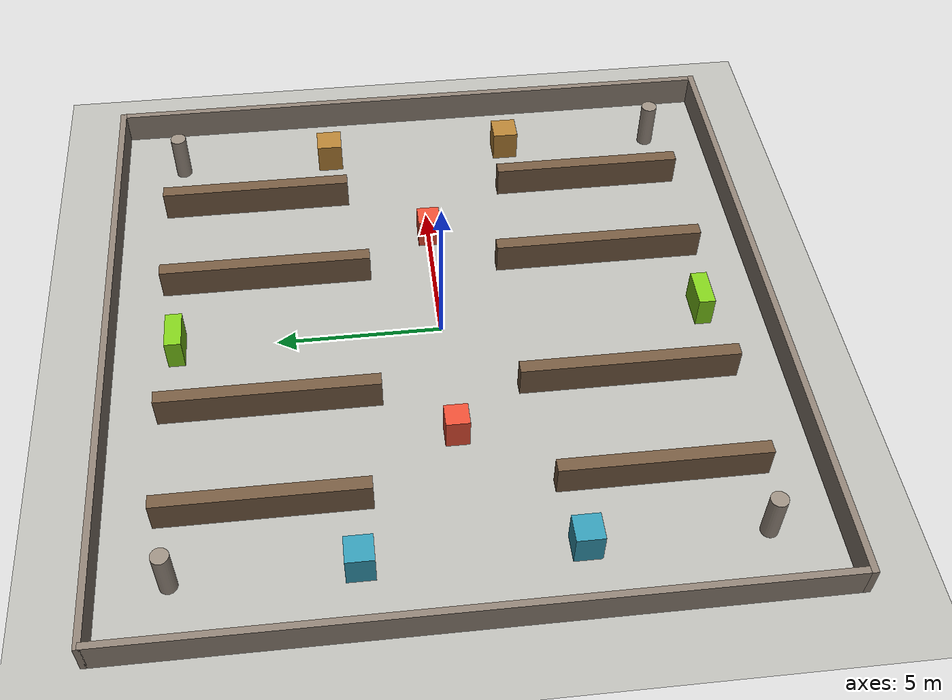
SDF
<?xml version="1.0" ?>
<sdf version="1.6">
  <world name="default">
    <physics name="1ms" type="ignored">
      <max_step_size>0.001</max_step_size>
      <real_time_factor>1.0</real_time_factor>
    </physics>
    <plugin filename="libignition-gazebo-physics-system.so"
            name="ignition::gazebo::systems::Physics"/>
    <plugin filename="libignition-gazebo-user-commands-system.so"
            name="ignition::gazebo::systems::UserCommands"/>
    <plugin filename="libignition-gazebo-scene-broadcaster-system.so"
            name="ignition::gazebo::systems::SceneBroadcaster"/>

    <light type="directional" name="sun">
      <cast_shadows>true</cast_shadows>
      <pose>0 0 10 0 0 0</pose>
      <diffuse>0.85 0.85 0.85 1</diffuse>
      <specular>0.2 0.2 0.2 1</specular>
      <attenuation>
        <range>1000</range><constant>0.9</constant>
        <linear>0.01</linear><quadratic>0.001</quadratic>
      </attenuation>
      <direction>-0.5 0.1 -0.9</direction>
    </light>

    <!-- Ground — concrete tone -->
    <model name="ground_plane"><static>true</static>
      <link name="link">
        <collision name="collision"><geometry><plane><normal>0 0 1</normal><size>100 100</size></plane></geometry></collision>
        <visual name="visual"><geometry><plane><normal>0 0 1</normal><size>100 100</size></plane></geometry>
          <material><ambient>0.72 0.72 0.7 1</ambient><diffuse>0.72 0.72 0.7 1</diffuse></material></visual>
      </link>
    </model>

    <!-- Outer warehouse walls (20×20 m) -->
    <model name="wall_n"><static>true</static><pose>0 10 0.5 0 0 0</pose>
      <link name="link"><collision name="c"><geometry><box><size>20.2 0.2 1</size></box></geometry></collision>
        <visual name="v"><geometry><box><size>20.2 0.2 1</size></box></geometry>
          <material><ambient>0.55 0.5 0.45 1</ambient><diffuse>0.55 0.5 0.45 1</diffuse></material></visual></link>
    </model>
    <model name="wall_s"><static>true</static><pose>0 -10 0.5 0 0 0</pose>
      <link name="link"><collision name="c"><geometry><box><size>20.2 0.2 1</size></box></geometry></collision>
        <visual name="v"><geometry><box><size>20.2 0.2 1</size></box></geometry>
          <material><ambient>0.55 0.5 0.45 1</ambient><diffuse>0.55 0.5 0.45 1</diffuse></material></visual></link>
    </model>
    <model name="wall_e"><static>true</static><pose>10 0 0.5 0 0 0</pose>
      <link name="link"><collision name="c"><geometry><box><size>0.2 20 1</size></box></geometry></collision>
        <visual name="v"><geometry><box><size>0.2 20 1</size></box></geometry>
          <material><ambient>0.55 0.5 0.45 1</ambient><diffuse>0.55 0.5 0.45 1</diffuse></material></visual></link>
    </model>
    <model name="wall_w"><static>true</static><pose>-10 0 0.5 0 0 0</pose>
      <link name="link"><collision name="c"><geometry><box><size>0.2 20 1</size></box></geometry></collision>
        <visual name="v"><geometry><box><size>0.2 20 1</size></box></geometry>
          <material><ambient>0.55 0.5 0.45 1</ambient><diffuse>0.55 0.5 0.45 1</diffuse></material></visual></link>
    </model>

    <!-- ROW WEST (x=-6): two shelf sections with 1.5m gap in middle so passages exist -->
    <!-- North section: y=2.5→8.5 (len=6, cy=5.5) -->
    <model name="shelf_w_N"><static>true</static><pose>-6 5.5 0.5 0 0 0</pose>
      <link name="link"><collision name="c"><geometry><box><size>0.4 6 1</size></box></geometry></collision>
        <visual name="v"><geometry><box><size>0.4 6 1</size></box></geometry>
          <material><ambient>0.45 0.35 0.25 1</ambient><diffuse>0.45 0.35 0.25 1</diffuse></material></visual></link>
    </model>
    <!-- South section: y=-8.5→-2.5 (len=6, cy=-5.5) -->
    <model name="shelf_w_S"><static>true</static><pose>-6 -5.5 0.5 0 0 0</pose>
      <link name="link"><collision name="c"><geometry><box><size>0.4 6 1</size></box></geometry></collision>
        <visual name="v"><geometry><box><size>0.4 6 1</size></box></geometry>
          <material><ambient>0.45 0.35 0.25 1</ambient><diffuse>0.45 0.35 0.25 1</diffuse></material></visual></link>
    </model>
    <!-- Gap in west row: y=-2.5→+2.5 = 5m wide — robot can cross aisle to far west zone -->

    <!-- ROW CENTER-LEFT (x=-2.5): split into two sections with 2m gap at y=0 area -->
    <!-- North section: y=2→8.5 (len=6.5, cy=5.25) -->
    <model name="shelf_cl_N"><static>true</static><pose>-2.5 5.25 0.5 0 0 0</pose>
      <link name="link"><collision name="c"><geometry><box><size>0.4 6.5 1</size></box></geometry></collision>
        <visual name="v"><geometry><box><size>0.4 6.5 1</size></box></geometry>
          <material><ambient>0.45 0.35 0.25 1</ambient><diffuse>0.45 0.35 0.25 1</diffuse></material></visual></link>
    </model>
    <!-- South section: y=-8.5→-2 (len=6.5, cy=-5.25) -->
    <model name="shelf_cl_S"><static>true</static><pose>-2.5 -5.25 0.5 0 0 0</pose>
      <link name="link"><collision name="c"><geometry><box><size>0.4 6.5 1</size></box></geometry></collision>
        <visual name="v"><geometry><box><size>0.4 6.5 1</size></box></geometry>
          <material><ambient>0.45 0.35 0.25 1</ambient><diffuse>0.45 0.35 0.25 1</diffuse></material></visual></link>
    </model>
    <!-- Gap at y=-2→+2 = 4m — robot passes through central aisle ✓ -->

    <!-- ROW CENTER-RIGHT (x=+2.5): mirrored of center-left -->
    <model name="shelf_cr_N"><static>true</static><pose>2.5 5.25 0.5 0 0 0</pose>
      <link name="link"><collision name="c"><geometry><box><size>0.4 6.5 1</size></box></geometry></collision>
        <visual name="v"><geometry><box><size>0.4 6.5 1</size></box></geometry>
          <material><ambient>0.45 0.35 0.25 1</ambient><diffuse>0.45 0.35 0.25 1</diffuse></material></visual></link>
    </model>
    <model name="shelf_cr_S"><static>true</static><pose>2.5 -5.25 0.5 0 0 0</pose>
      <link name="link"><collision name="c"><geometry><box><size>0.4 6.5 1</size></box></geometry></collision>
        <visual name="v"><geometry><box><size>0.4 6.5 1</size></box></geometry>
          <material><ambient>0.45 0.35 0.25 1</ambient><diffuse>0.45 0.35 0.25 1</diffuse></material></visual></link>
    </model>

    <!-- ROW EAST (x=+6): mirrored of west -->
    <model name="shelf_e_N"><static>true</static><pose>6 5.5 0.5 0 0 0</pose>
      <link name="link"><collision name="c"><geometry><box><size>0.4 6 1</size></box></geometry></collision>
        <visual name="v"><geometry><box><size>0.4 6 1</size></box></geometry>
          <material><ambient>0.45 0.35 0.25 1</ambient><diffuse>0.45 0.35 0.25 1</diffuse></material></visual></link>
    </model>
    <model name="shelf_e_S"><static>true</static><pose>6 -5.5 0.5 0 0 0</pose>
      <link name="link"><collision name="c"><geometry><box><size>0.4 6 1</size></box></geometry></collision>
        <visual name="v"><geometry><box><size>0.4 6 1</size></box></geometry>
          <material><ambient>0.45 0.35 0.25 1</ambient><diffuse>0.45 0.35 0.25 1</diffuse></material></visual></link>
    </model>

    <!-- ════ PILLARS (cylindrical support columns) ════════════════
         4 pillars per side row — structural columns marking aisle ends
    ════════════════════════════════════════════════════════════== -->
    <model name="pillar_1"><static>true</static><pose>-8.0  8.0 0.75 0 0 0</pose>
      <link name="link"><collision name="c"><geometry><cylinder><radius>0.25</radius><length>1.5</length></cylinder></geometry></collision>
        <visual name="v"><geometry><cylinder><radius>0.25</radius><length>1.5</length></cylinder></geometry>
          <material><ambient>0.6 0.55 0.5 1</ambient><diffuse>0.6 0.55 0.5 1</diffuse></material></visual></link>
    </model>
    <model name="pillar_2"><static>true</static><pose>8.0  8.0 0.75 0 0 0</pose>
      <link name="link"><collision name="c"><geometry><cylinder><radius>0.25</radius><length>1.5</length></cylinder></geometry></collision>
        <visual name="v"><geometry><cylinder><radius>0.25</radius><length>1.5</length></cylinder></geometry>
          <material><ambient>0.6 0.55 0.5 1</ambient><diffuse>0.6 0.55 0.5 1</diffuse></material></visual></link>
    </model>
    <model name="pillar_3"><static>true</static><pose>-8.0 -8.0 0.75 0 0 0</pose>
      <link name="link"><collision name="c"><geometry><cylinder><radius>0.25</radius><length>1.5</length></cylinder></geometry></collision>
        <visual name="v"><geometry><cylinder><radius>0.25</radius><length>1.5</length></cylinder></geometry>
          <material><ambient>0.6 0.55 0.5 1</ambient><diffuse>0.6 0.55 0.5 1</diffuse></material></visual></link>
    </model>
    <model name="pillar_4"><static>true</static><pose>8.0 -8.0 0.75 0 0 0</pose>
      <link name="link"><collision name="c"><geometry><cylinder><radius>0.25</radius><length>1.5</length></cylinder></geometry></collision>
        <visual name="v"><geometry><cylinder><radius>0.25</radius><length>1.5</length></cylinder></geometry>
          <material><ambient>0.6 0.55 0.5 1</ambient><diffuse>0.6 0.55 0.5 1</diffuse></material></visual></link>
    </model>

    <!-- ════ CRATE OBSTACLES (loading zone, east & west ends) ════ -->
    <!-- East loading zone (x=7 to 9.5, y varies) -->
    <model name="crate_1"><static>true</static><pose>8.0  3.0 0.5 0 0 0</pose>
      <link name="link"><collision name="c"><geometry><box><size>0.8 0.8 1</size></box></geometry></collision>
        <visual name="v"><geometry><box><size>0.8 0.8 1</size></box></geometry>
          <material><ambient>0.7 0.5 0.2 1</ambient><diffuse>0.7 0.5 0.2 1</diffuse></material></visual></link>
    </model>
    <model name="crate_2"><static>true</static><pose>8.0 -3.0 0.5 0 0 0</pose>
      <link name="link"><collision name="c"><geometry><box><size>0.8 0.8 1</size></box></geometry></collision>
        <visual name="v"><geometry><box><size>0.8 0.8 1</size></box></geometry>
          <material><ambient>0.7 0.5 0.2 1</ambient><diffuse>0.7 0.5 0.2 1</diffuse></material></visual></link>
    </model>
    <!-- West loading zone -->
    <model name="crate_3"><static>true</static><pose>-8.0  3.0 0.5 0 0 0</pose>
      <link name="link"><collision name="c"><geometry><box><size>0.8 0.8 1</size></box></geometry></collision>
        <visual name="v"><geometry><box><size>0.8 0.8 1</size></box></geometry>
          <material><ambient>0.2 0.6 0.7 1</ambient><diffuse>0.2 0.6 0.7 1</diffuse></material></visual></link>
    </model>
    <model name="crate_4"><static>true</static><pose>-8.0 -3.0 0.5 0 0 0</pose>
      <link name="link"><collision name="c"><geometry><box><size>0.8 0.8 1</size></box></geometry></collision>
        <visual name="v"><geometry><box><size>0.8 0.8 1</size></box></geometry>
          <material><ambient>0.2 0.6 0.7 1</ambient><diffuse>0.2 0.6 0.7 1</diffuse></material></visual></link>
    </model>
    <!-- Scattered crates in aisles between shelving -->
    <model name="crate_5"><static>true</static><pose>-4.0  0.0 0.5 0 0 0</pose>
      <link name="link"><collision name="c"><geometry><box><size>0.7 0.7 1</size></box></geometry></collision>
        <visual name="v"><geometry><box><size>0.7 0.7 1</size></box></geometry>
          <material><ambient>0.9 0.3 0.2 1</ambient><diffuse>0.9 0.3 0.2 1</diffuse></material></visual></link>
    </model>
    <model name="crate_6"><static>true</static><pose>4.0   0.0 0.5 0 0 0</pose>
      <link name="link"><collision name="c"><geometry><box><size>0.7 0.7 1</size></box></geometry></collision>
        <visual name="v"><geometry><box><size>0.7 0.7 1</size></box></geometry>
          <material><ambient>0.9 0.3 0.2 1</ambient><diffuse>0.9 0.3 0.2 1</diffuse></material></visual></link>
    </model>
    <model name="crate_7"><static>true</static><pose>0.0   8.0 0.5 0 0 0</pose>
      <link name="link"><collision name="c"><geometry><box><size>1.2 0.5 1</size></box></geometry></collision>
        <visual name="v"><geometry><box><size>1.2 0.5 1</size></box></geometry>
          <material><ambient>0.5 0.8 0.1 1</ambient><diffuse>0.5 0.8 0.1 1</diffuse></material></visual></link>
    </model>
    <model name="crate_8"><static>true</static><pose>0.0  -8.0 0.5 0 0 0</pose>
      <link name="link"><collision name="c"><geometry><box><size>1.2 0.5 1</size></box></geometry></collision>
        <visual name="v"><geometry><box><size>1.2 0.5 1</size></box></geometry>
          <material><ambient>0.5 0.8 0.1 1</ambient><diffuse>0.5 0.8 0.1 1</diffuse></material></visual></link>
    </model>

  </world>
</sdf>
